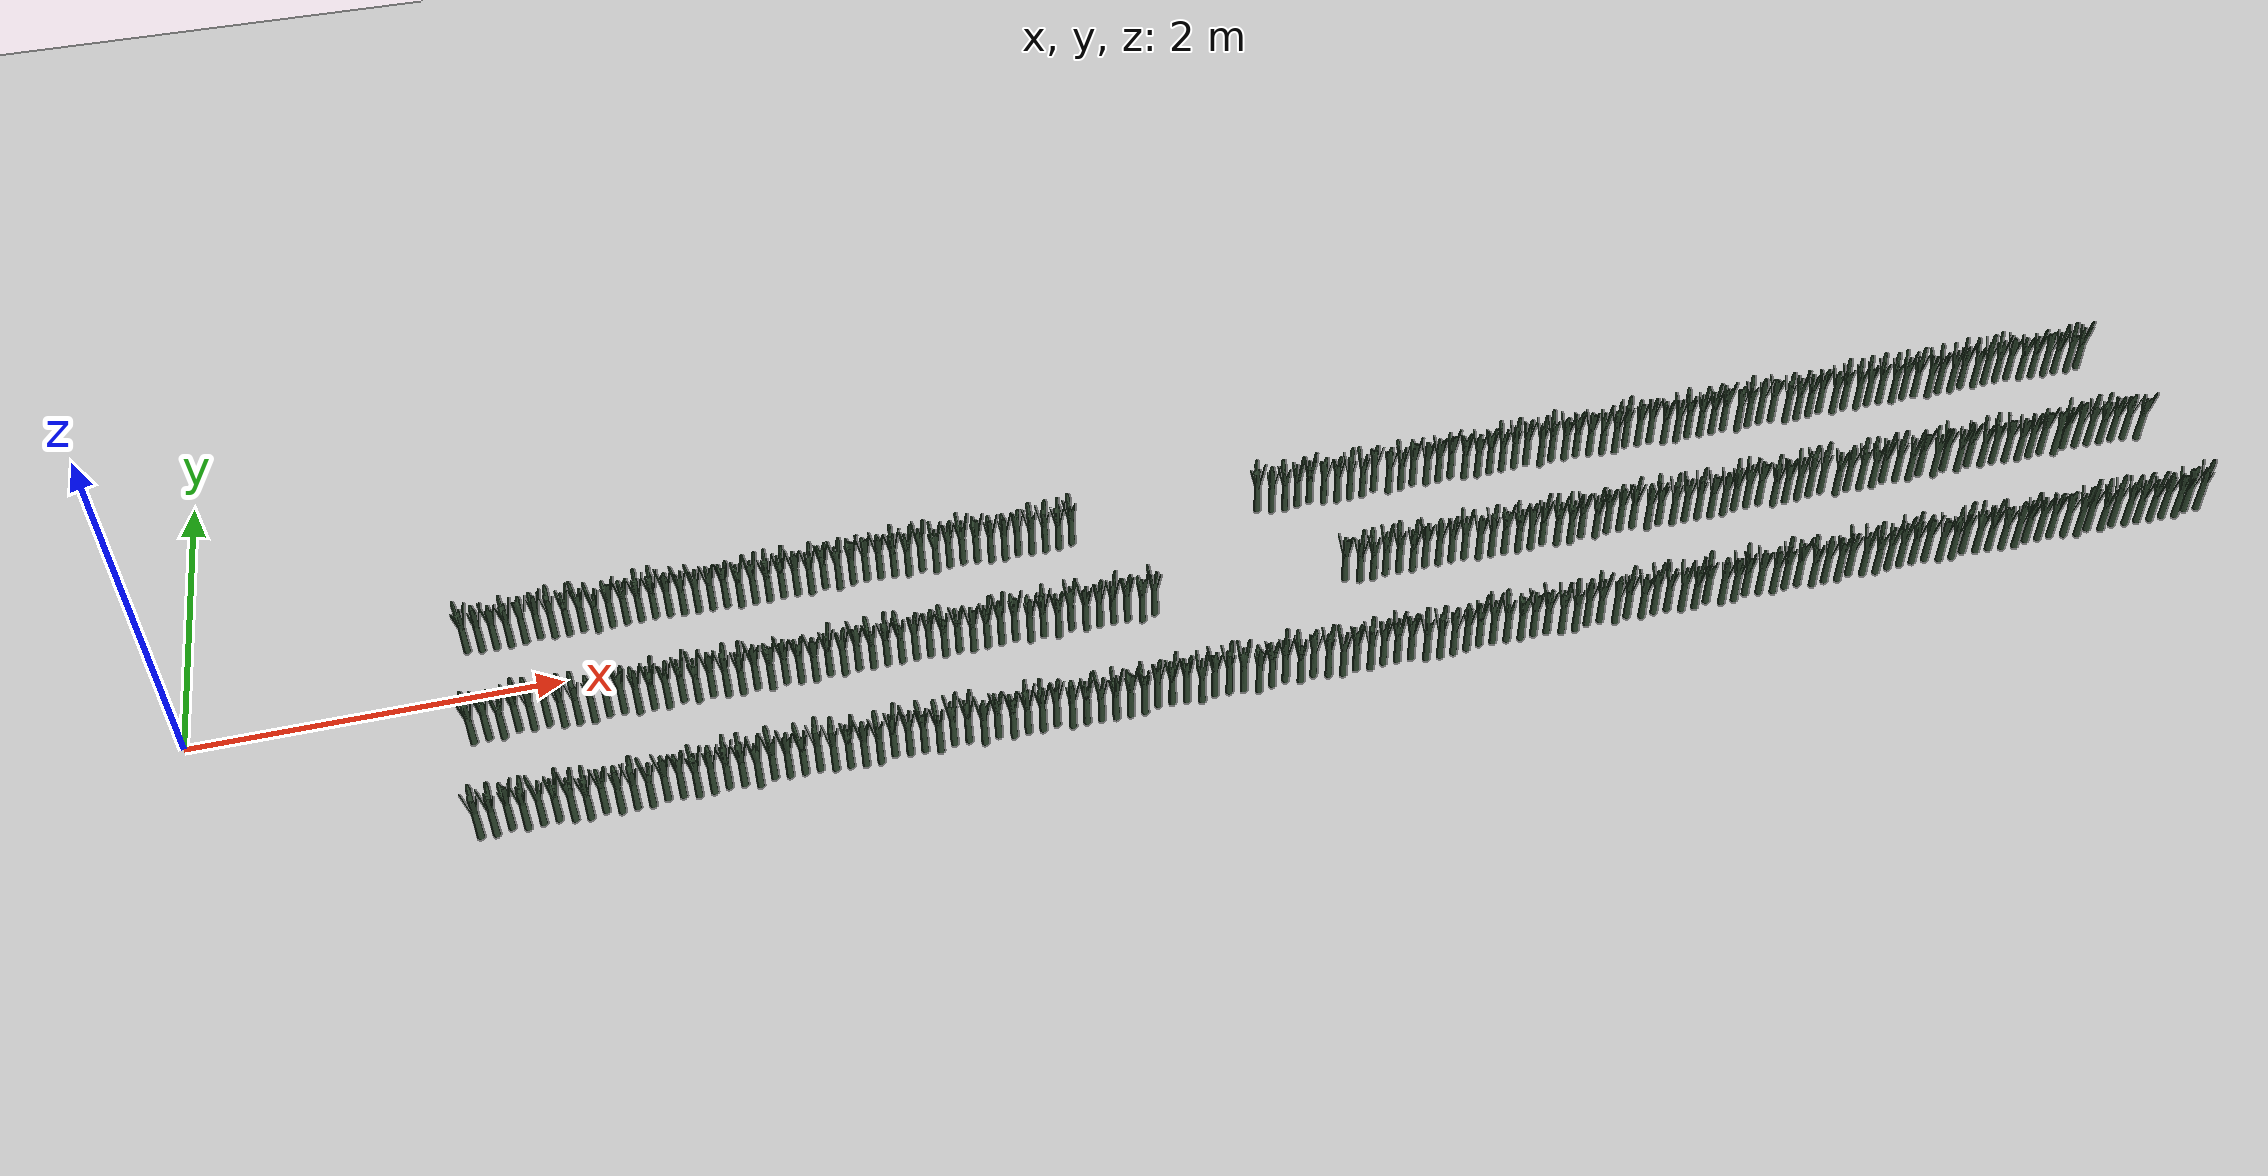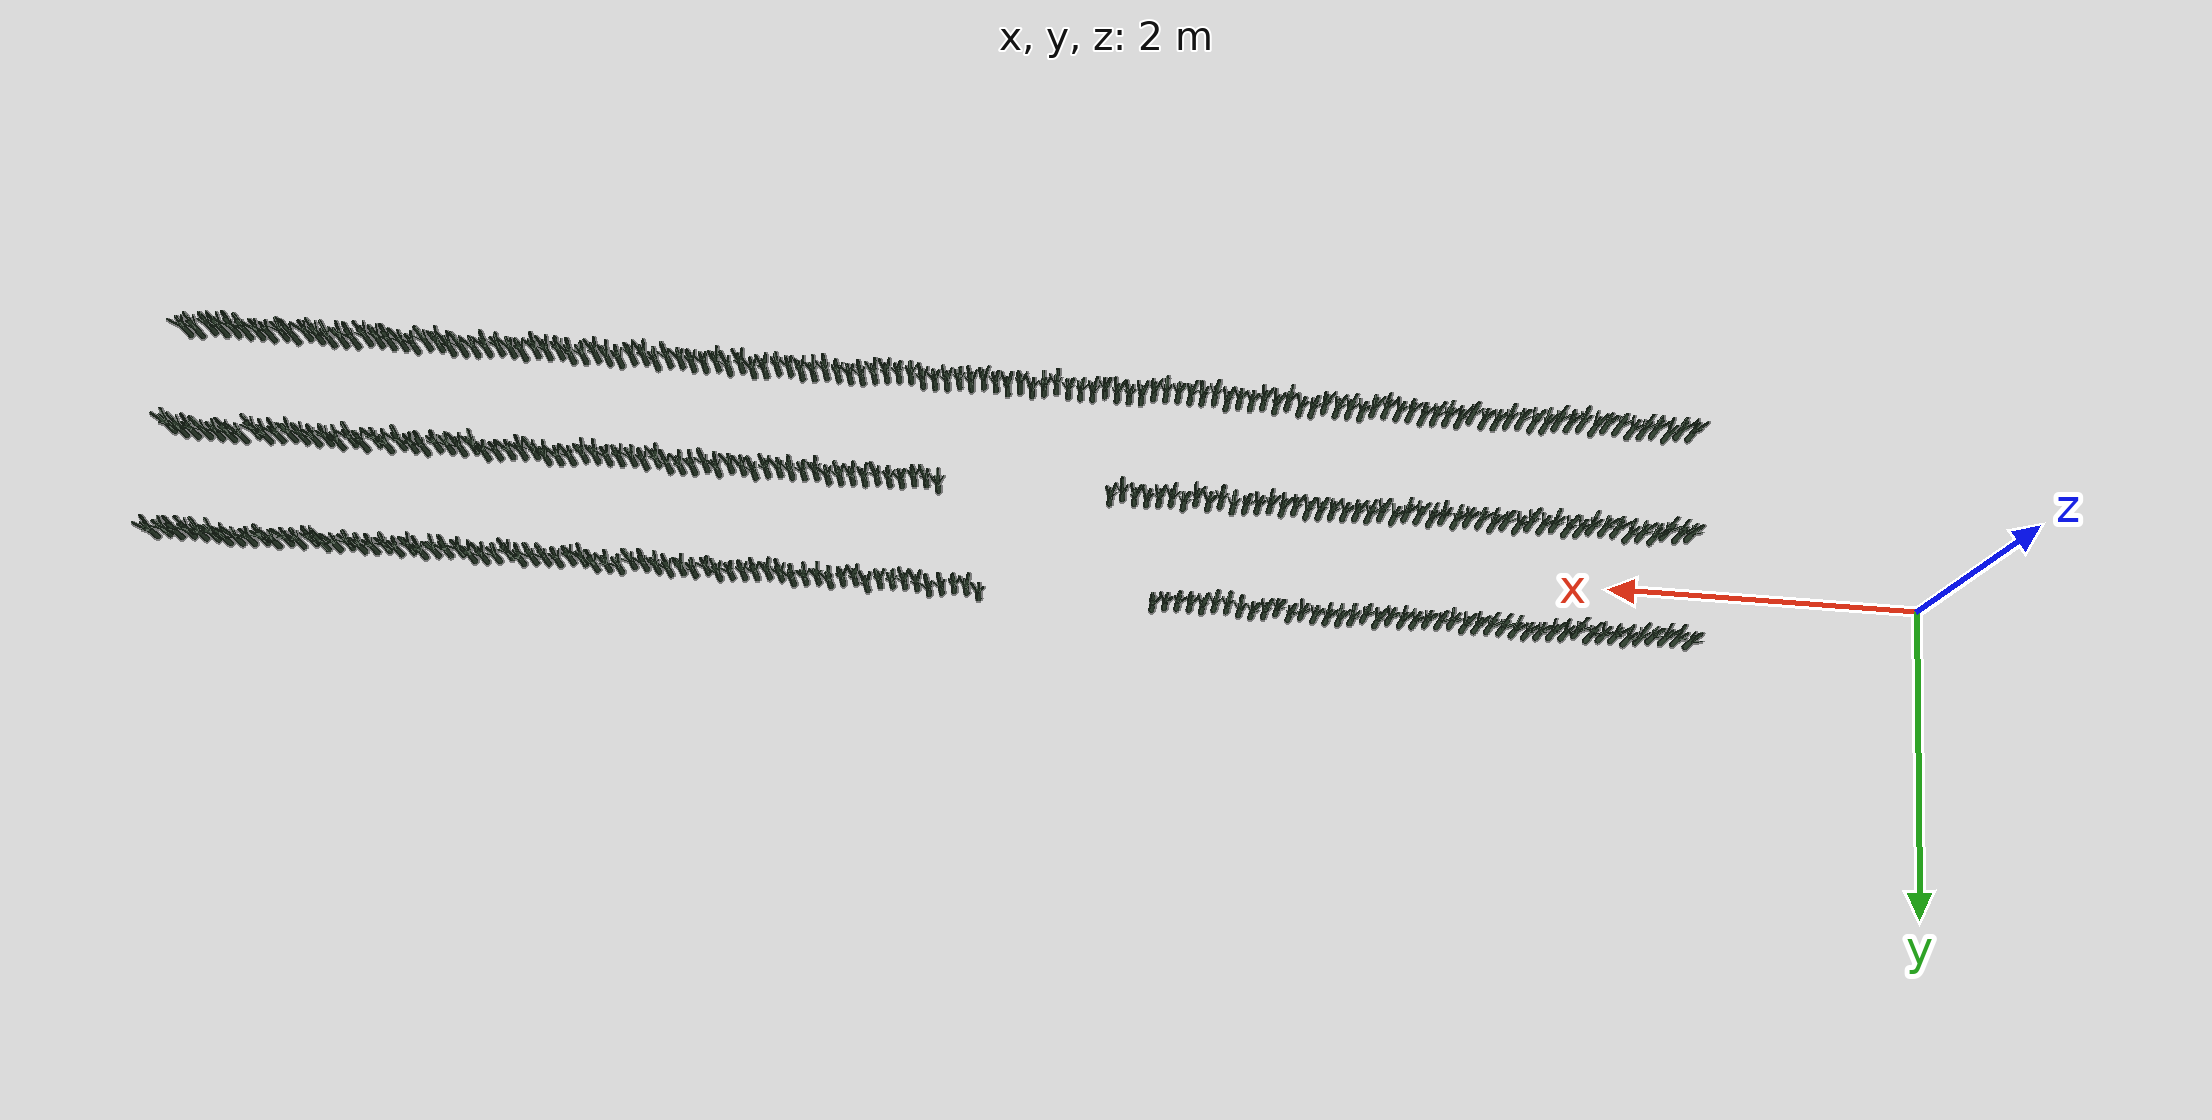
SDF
<sdf version="1.6">
 <world name="default">
  <light name="sun" type="directional">
   <pose>0 0 10 0 -0 0</pose>
   <diffuse>0.5 0.5 0.5 1</diffuse>
   <specular>0.1 0.1 0.1 1</specular>
   <attenuation>
    <range>1000</range>
    <constant>0.9</constant>
    <linear>0.01</linear>
    <quadratic>0.001</quadratic>
   </attenuation>
   <direction>0.9 0.5 -1</direction>
  </light>
  <scene><background>130 200 255 1</background><ambient>130 140 140 1</ambient></scene>
  <include><uri>model://dirt_plane</uri></include>
  <include><uri>model://Leek</uri><pose>1.500000 0.350738 0.15 0 0 6.641212</pose><static>0</static></include>
  <include>
   <uri>model://Leek</uri>
   <pose>1.580000 0.337965 0.15 0 0 -108.317164</pose>
   <static>0</static>
  </include>
  <include>
   <uri>model://Leek</uri>
   <pose>1.660000 0.338486 0.15 0 0 -103.623728</pose>
   <static>0</static>
  </include>
  <include>
   <uri>model://Leek</uri>
   <pose>1.740000 0.334666 0.15 0 0 -138.005332</pose>
   <static>0</static>
  </include>
  <include><uri>model://Leek</uri><pose>1.820000 0.345606 0.15 0 0 -39.543914</pose><static>0</static></include>
  <include><uri>model://Leek</uri><pose>1.900000 0.363814 0.15 0 0 124.326947</pose><static>0</static></include>
  <include><uri>model://Leek</uri><pose>1.980000 0.349480 0.15 0 0 -4.683625</pose><static>0</static></include>
  <include><uri>model://Leek</uri><pose>2.060000 0.349216 0.15 0 0 -7.057647</pose><static>0</static></include>
  <include><uri>model://Leek</uri><pose>2.140000 0.357944 0.15 0 0 71.493227</pose><static>0</static></include>
  <include>
   <uri>model://Leek</uri>
   <pose>2.220000 0.333524 0.15 0 0 -148.279589</pose>
   <static>0</static>
  </include>
  <include><uri>model://Leek</uri><pose>2.300000 0.355450 0.15 0 0 49.053774</pose><static>0</static></include>
  <include><uri>model://Leek</uri><pose>2.380000 0.358770 0.15 0 0 78.932972</pose><static>0</static></include>
  <include><uri>model://Leek</uri><pose>2.460000 0.360460 0.15 0 0 94.143497</pose><static>0</static></include>
  <include><uri>model://Leek</uri><pose>2.540000 0.366741 0.15 0 0 150.665443</pose><static>0</static></include>
  <include><uri>model://Leek</uri><pose>2.620000 0.359409 0.15 0 0 84.679162</pose><static>0</static></include>
  <include><uri>model://Leek</uri><pose>2.700000 0.350998 0.15 0 0 8.978194</pose><static>0</static></include>
  <include><uri>model://Leek</uri><pose>2.780000 0.346807 0.15 0 0 -28.740285</pose><static>0</static></include>
  <include><uri>model://Leek</uri><pose>2.860000 0.349687 0.15 0 0 -2.818820</pose><static>0</static></include>
  <include><uri>model://Leek</uri><pose>2.940000 0.352518 0.15 0 0 22.665138</pose><static>0</static></include>
  <include>
   <uri>model://Leek</uri>
   <pose>3.020000 0.330347 0.15 0 0 -176.876956</pose>
   <static>0</static>
  </include>
  <include><uri>model://Leek</uri><pose>3.100000 0.338923 0.15 0 0 -99.691623</pose><static>0</static></include>
  <include>
   <uri>model://Leek</uri>
   <pose>3.180000 0.335329 0.15 0 0 -132.042288</pose>
   <static>0</static>
  </include>
  <include><uri>model://Leek</uri><pose>3.260000 0.347844 0.15 0 0 -19.403983</pose><static>0</static></include>
  <include><uri>model://Leek</uri><pose>3.340000 0.348261 0.15 0 0 -15.650857</pose><static>0</static></include>
  <include>
   <uri>model://Leek</uri>
   <pose>3.420000 0.335291 0.15 0 0 -132.381455</pose>
   <static>0</static>
  </include>
  <include><uri>model://Leek</uri><pose>3.500000 0.362989 0.15 0 0 116.902059</pose><static>0</static></include>
  <include>
   <uri>model://Leek</uri>
   <pose>3.580000 0.332657 0.15 0 0 -156.091371</pose>
   <static>0</static>
  </include>
  <include><uri>model://Leek</uri><pose>3.660000 0.356133 0.15 0 0 55.195703</pose><static>0</static></include>
  <include><uri>model://Leek</uri><pose>3.740000 0.367121 0.15 0 0 154.091668</pose><static>0</static></include>
  <include><uri>model://Leek</uri><pose>3.820000 0.366402 0.15 0 0 147.619421</pose><static>0</static></include>
  <include><uri>model://Leek</uri><pose>3.900000 0.359763 0.15 0 0 87.863999</pose><static>0</static></include>
  <include><uri>model://Leek</uri><pose>3.980000 0.342928 0.15 0 0 -63.651276</pose><static>0</static></include>
  <include><uri>model://Leek</uri><pose>4.060000 0.364053 0.15 0 0 126.477413</pose><static>0</static></include>
  <include>
   <uri>model://Leek</uri>
   <pose>4.140000 0.331195 0.15 0 0 -169.246372</pose>
   <static>0</static>
  </include>
  <include><uri>model://Leek</uri><pose>4.220000 0.357425 0.15 0 0 66.822756</pose><static>0</static></include>
  <include><uri>model://Leek</uri><pose>4.300000 0.364004 0.15 0 0 126.034911</pose><static>0</static></include>
  <include><uri>model://Leek</uri><pose>4.380000 0.357517 0.15 0 0 67.654908</pose><static>0</static></include>
  <include>
   <uri>model://Leek</uri>
   <pose>4.460000 0.337250 0.15 0 0 -114.753601</pose>
   <static>0</static>
  </include>
  <include>
   <uri>model://Leek</uri>
   <pose>4.540000 0.333759 0.15 0 0 -146.169331</pose>
   <static>0</static>
  </include>
  <include><uri>model://Leek</uri><pose>4.620000 0.353249 0.15 0 0 29.240640</pose><static>0</static></include>
  <include><uri>model://Leek</uri><pose>4.700000 0.343898 0.15 0 0 -54.919062</pose><static>0</static></include>
  <include><uri>model://Leek</uri><pose>4.780000 0.341766 0.15 0 0 -74.102989</pose><static>0</static></include>
  <include><uri>model://Leek</uri><pose>4.860000 0.345085 0.15 0 0 -44.235894</pose><static>0</static></include>
  <include><uri>model://Leek</uri><pose>4.940000 0.363457 0.15 0 0 121.111263</pose><static>0</static></include>
  <include><uri>model://Leek</uri><pose>6.060000 0.369526 0.15 0 0 175.737885</pose><static>0</static></include>
  <include><uri>model://Leek</uri><pose>6.140000 0.340703 0.15 0 0 -83.676758</pose><static>0</static></include>
  <include>
   <uri>model://Leek</uri>
   <pose>6.220000 0.334823 0.15 0 0 -136.588645</pose>
   <static>0</static>
  </include>
  <include><uri>model://Leek</uri><pose>6.300000 0.350574 0.15 0 0 5.165197</pose><static>0</static></include>
  <include><uri>model://Leek</uri><pose>6.380000 0.366630 0.15 0 0 149.665604</pose><static>0</static></include>
  <include>
   <uri>model://Leek</uri>
   <pose>6.460000 0.337880 0.15 0 0 -109.078281</pose>
   <static>0</static>
  </include>
  <include>
   <uri>model://Leek</uri>
   <pose>6.540000 0.330176 0.15 0 0 -178.414914</pose>
   <static>0</static>
  </include>
  <include>
   <uri>model://Leek</uri>
   <pose>6.620000 0.334066 0.15 0 0 -143.408214</pose>
   <static>0</static>
  </include>
  <include>
   <uri>model://Leek</uri>
   <pose>6.700000 0.337669 0.15 0 0 -110.977081</pose>
   <static>0</static>
  </include>
  <include><uri>model://Leek</uri><pose>6.780000 0.369982 0.15 0 0 179.837470</pose><static>0</static></include>
  <include>
   <uri>model://Leek</uri>
   <pose>6.860000 0.330207 0.15 0 0 -178.134073</pose>
   <static>0</static>
  </include>
  <include><uri>model://Leek</uri><pose>6.940000 0.340454 0.15 0 0 -85.913833</pose><static>0</static></include>
  <include><uri>model://Leek</uri><pose>7.020000 0.360988 0.15 0 0 98.893372</pose><static>0</static></include>
  <include><uri>model://Leek</uri><pose>7.100000 0.342640 0.15 0 0 -66.237679</pose><static>0</static></include>
  <include><uri>model://Leek</uri><pose>7.180000 0.353132 0.15 0 0 28.184043</pose><static>0</static></include>
  <include><uri>model://Leek</uri><pose>7.260000 0.365189 0.15 0 0 136.704207</pose><static>0</static></include>
  <include><uri>model://Leek</uri><pose>7.340000 0.339914 0.15 0 0 -90.777461</pose><static>0</static></include>
  <include>
   <uri>model://Leek</uri>
   <pose>7.420000 0.332841 0.15 0 0 -154.431525</pose>
   <static>0</static>
  </include>
  <include><uri>model://Leek</uri><pose>7.500000 0.344107 0.15 0 0 -53.039733</pose><static>0</static></include>
  <include><uri>model://Leek</uri><pose>7.580000 0.348120 0.15 0 0 -16.921188</pose><static>0</static></include>
  <include><uri>model://Leek</uri><pose>7.660000 0.353588 0.15 0 0 32.295222</pose><static>0</static></include>
  <include><uri>model://Leek</uri><pose>7.740000 0.365068 0.15 0 0 135.616470</pose><static>0</static></include>
  <include>
   <uri>model://Leek</uri>
   <pose>7.820000 0.330540 0.15 0 0 -175.141695</pose>
   <static>0</static>
  </include>
  <include><uri>model://Leek</uri><pose>7.900000 0.357836 0.15 0 0 70.525484</pose><static>0</static></include>
  <include><uri>model://Leek</uri><pose>7.980000 0.347492 0.15 0 0 -22.569910</pose><static>0</static></include>
  <include><uri>model://Leek</uri><pose>8.060000 0.362255 0.15 0 0 110.290647</pose><static>0</static></include>
  <include><uri>model://Leek</uri><pose>8.140000 0.348928 0.15 0 0 -9.645090</pose><static>0</static></include>
  <include>
   <uri>model://Leek</uri>
   <pose>8.220000 0.337989 0.15 0 0 -108.097277</pose>
   <static>0</static>
  </include>
  <include>
   <uri>model://Leek</uri>
   <pose>8.300000 0.331080 0.15 0 0 -170.281667</pose>
   <static>0</static>
  </include>
  <include><uri>model://Leek</uri><pose>8.380000 0.367569 0.15 0 0 158.122796</pose><static>0</static></include>
  <include><uri>model://Leek</uri><pose>8.460000 0.360959 0.15 0 0 98.633389</pose><static>0</static></include>
  <include><uri>model://Leek</uri><pose>8.540000 0.367157 0.15 0 0 154.414109</pose><static>0</static></include>
  <include>
   <uri>model://Leek</uri>
   <pose>8.620000 0.335692 0.15 0 0 -128.767985</pose>
   <static>0</static>
  </include>
  <include>
   <uri>model://Leek</uri>
   <pose>8.700000 0.331394 0.15 0 0 -167.449909</pose>
   <static>0</static>
  </include>
  <include><uri>model://Leek</uri><pose>8.780000 0.352994 0.15 0 0 26.948638</pose><static>0</static></include>
  <include><uri>model://Leek</uri><pose>8.860000 0.347103 0.15 0 0 -26.069259</pose><static>0</static></include>
  <include><uri>model://Leek</uri><pose>8.940000 0.350587 0.15 0 0 5.286899</pose><static>0</static></include>
  <include><uri>model://Leek</uri><pose>9.020000 0.363090 0.15 0 0 117.806316</pose><static>0</static></include>
  <include>
   <uri>model://Leek</uri>
   <pose>9.100000 0.330182 0.15 0 0 -178.362670</pose>
   <static>0</static>
  </include>
  <include><uri>model://Leek</uri><pose>9.180000 0.355036 0.15 0 0 45.319845</pose><static>0</static></include>
  <include><uri>model://Leek</uri><pose>9.260000 0.365809 0.15 0 0 142.278627</pose><static>0</static></include>
  <include><uri>model://Leek</uri><pose>9.340000 0.366360 0.15 0 0 147.244085</pose><static>0</static></include>
  <include>
   <uri>model://Leek</uri>
   <pose>9.420000 0.331253 0.15 0 0 -168.721054</pose>
   <static>0</static>
  </include>
  <include><uri>model://Leek</uri><pose>9.500000 0.342874 0.15 0 0 -64.136835</pose><static>0</static></include>
  <include><uri>model://Leek</uri><pose>9.580000 0.348237 0.15 0 0 -15.871108</pose><static>0</static></include>
  <include><uri>model://Leek</uri><pose>9.660000 0.366440 0.15 0 0 147.956955</pose><static>0</static></include>
  <include><uri>model://Leek</uri><pose>9.740000 0.339810 0.15 0 0 -91.709319</pose><static>0</static></include>
  <include><uri>model://Leek</uri><pose>9.820000 0.358521 0.15 0 0 76.690620</pose><static>0</static></include>
  <include><uri>model://Leek</uri><pose>9.900000 0.340390 0.15 0 0 -86.487112</pose><static>0</static></include>
  <include><uri>model://Leek</uri><pose>9.980000 0.355769 0.15 0 0 51.917744</pose><static>0</static></include>
  <include><uri>model://Leek</uri><pose>10.060000 0.356436 0.15 0 0 57.925815</pose><static>0</static></include>
  <include>
   <uri>model://Leek</uri>
   <pose>10.140000 0.339678 0.15 0 0 -92.901990</pose>
   <static>0</static>
  </include>
  <include><uri>model://Leek</uri><pose>10.220000 0.356281 0.15 0 0 56.532088</pose><static>0</static></include>
  <include><uri>model://Leek</uri><pose>10.300000 0.358976 0.15 0 0 80.786375</pose><static>0</static></include>
  <include>
   <uri>model://Leek</uri>
   <pose>10.380000 0.332077 0.15 0 0 -161.306491</pose>
   <static>0</static>
  </include>
  <include><uri>model://Leek</uri><pose>10.460000 0.353685 0.15 0 0 33.165953</pose><static>0</static></include>
  <include>
   <uri>model://Leek</uri>
   <pose>10.540000 0.343026 0.15 0 0 -62.769984</pose>
   <static>0</static>
  </include>
  <include>
   <uri>model://Leek</uri>
   <pose>10.620000 0.363939 0.15 0 0 125.450021</pose>
   <static>0</static>
  </include>
  <include>
   <uri>model://Leek</uri>
   <pose>10.700000 0.347399 0.15 0 0 -23.409945</pose>
   <static>0</static>
  </include>
  <include><uri>model://Leek</uri><pose>10.780000 0.360566 0.15 0 0 95.095916</pose><static>0</static></include>
  <include>
   <uri>model://Leek</uri>
   <pose>10.860000 0.363943 0.15 0 0 125.489317</pose>
   <static>0</static>
  </include>
  <include>
   <uri>model://Leek</uri>
   <pose>10.940000 0.367039 0.15 0 0 153.348278</pose>
   <static>0</static>
  </include>
  <include>
   <uri>model://Leek</uri>
   <pose>11.020000 0.348229 0.15 0 0 -15.938171</pose>
   <static>0</static>
  </include>
  <include>
   <uri>model://Leek</uri>
   <pose>11.100000 0.347754 0.15 0 0 -20.214056</pose>
   <static>0</static>
  </include>
  <include>
   <uri>model://Leek</uri>
   <pose>11.180000 0.339941 0.15 0 0 -90.527195</pose>
   <static>0</static>
  </include>
  <include><uri>model://Leek</uri><pose>11.260000 0.349871 0.15 0 0 -1.164382</pose><static>0</static></include>
  <include>
   <uri>model://Leek</uri>
   <pose>11.340000 0.337557 0.15 0 0 -111.984070</pose>
   <static>0</static>
  </include>
  <include><uri>model://Leek</uri><pose>11.420000 0.356818 0.15 0 0 61.365972</pose><static>0</static></include>
  <include>
   <uri>model://Leek</uri>
   <pose>1.500000 -0.366033 0.15 0 0 -144.296088</pose>
   <static>0</static>
  </include>
  <include>
   <uri>model://Leek</uri>
   <pose>1.580000 -0.353177 0.15 0 0 -28.590391</pose>
   <static>0</static>
  </include>
  <include>
   <uri>model://Leek</uri>
   <pose>1.660000 -0.367863 0.15 0 0 -160.765905</pose>
   <static>0</static>
  </include>
  <include>
   <uri>model://Leek</uri>
   <pose>1.740000 -0.331004 0.15 0 0 170.965925</pose>
   <static>0</static>
  </include>
  <include><uri>model://Leek</uri><pose>1.820000 -0.344914 0.15 0 0 45.772939</pose><static>0</static></include>
  <include>
   <uri>model://Leek</uri>
   <pose>1.900000 -0.332695 0.15 0 0 155.748882</pose>
   <static>0</static>
  </include>
  <include>
   <uri>model://Leek</uri>
   <pose>1.980000 -0.361010 0.15 0 0 -99.089471</pose>
   <static>0</static>
  </include>
  <include>
   <uri>model://Leek</uri>
   <pose>2.060000 -0.363774 0.15 0 0 -123.969971</pose>
   <static>0</static>
  </include>
  <include>
   <uri>model://Leek</uri>
   <pose>2.140000 -0.369010 0.15 0 0 -171.092462</pose>
   <static>0</static>
  </include>
  <include><uri>model://Leek</uri><pose>2.220000 -0.344480 0.15 0 0 49.683829</pose><static>0</static></include>
  <include><uri>model://Leek</uri><pose>2.300000 -0.339783 0.15 0 0 91.954410</pose><static>0</static></include>
  <include>
   <uri>model://Leek</uri>
   <pose>2.380000 -0.365509 0.15 0 0 -139.585137</pose>
   <static>0</static>
  </include>
  <include><uri>model://Leek</uri><pose>2.460000 -0.349367 0.15 0 0 5.699175</pose><static>0</static></include>
  <include>
   <uri>model://Leek</uri>
   <pose>2.540000 -0.364202 0.15 0 0 -127.814466</pose>
   <static>0</static>
  </include>
  <include>
   <uri>model://Leek</uri>
   <pose>2.620000 -0.337519 0.15 0 0 112.332763</pose>
   <static>0</static>
  </include>
  <include>
   <uri>model://Leek</uri>
   <pose>2.700000 -0.359003 0.15 0 0 -81.024208</pose>
   <static>0</static>
  </include>
  <include>
   <uri>model://Leek</uri>
   <pose>2.780000 -0.337074 0.15 0 0 116.333094</pose>
   <static>0</static>
  </include>
  <include>
   <uri>model://Leek</uri>
   <pose>2.860000 -0.356125 0.15 0 0 -55.126251</pose>
   <static>0</static>
  </include>
  <include>
   <uri>model://Leek</uri>
   <pose>2.940000 -0.362603 0.15 0 0 -113.430679</pose>
   <static>0</static>
  </include>
  <include><uri>model://Leek</uri><pose>3.020000 -0.341287 0.15 0 0 78.414388</pose><static>0</static></include>
  <include>
   <uri>model://Leek</uri>
   <pose>3.100000 -0.367587 0.15 0 0 -158.283199</pose>
   <static>0</static>
  </include>
  <include><uri>model://Leek</uri><pose>3.180000 -0.341295 0.15 0 0 78.343498</pose><static>0</static></include>
  <include>
   <uri>model://Leek</uri>
   <pose>3.260000 -0.356569 0.15 0 0 -59.124346</pose>
   <static>0</static>
  </include>
  <include>
   <uri>model://Leek</uri>
   <pose>3.340000 -0.367116 0.15 0 0 -154.045165</pose>
   <static>0</static>
  </include>
  <include>
   <uri>model://Leek</uri>
   <pose>3.420000 -0.338888 0.15 0 0 100.011337</pose>
   <static>0</static>
  </include>
  <include>
   <uri>model://Leek</uri>
   <pose>3.500000 -0.357930 0.15 0 0 -71.370610</pose>
   <static>0</static>
  </include>
  <include>
   <uri>model://Leek</uri>
   <pose>3.580000 -0.337131 0.15 0 0 115.819202</pose>
   <static>0</static>
  </include>
  <include><uri>model://Leek</uri><pose>3.660000 -0.346984 0.15 0 0 27.141846</pose><static>0</static></include>
  <include><uri>model://Leek</uri><pose>3.740000 -0.339556 0.15 0 0 93.995789</pose><static>0</static></include>
  <include><uri>model://Leek</uri><pose>3.820000 -0.344188 0.15 0 0 52.309194</pose><static>0</static></include>
  <include>
   <uri>model://Leek</uri>
   <pose>3.900000 -0.336289 0.15 0 0 123.399502</pose>
   <static>0</static>
  </include>
  <include>
   <uri>model://Leek</uri>
   <pose>3.980000 -0.332810 0.15 0 0 154.712275</pose>
   <static>0</static>
  </include>
  <include>
   <uri>model://Leek</uri>
   <pose>4.060000 -0.356063 0.15 0 0 -54.567453</pose>
   <static>0</static>
  </include>
  <include><uri>model://Leek</uri><pose>4.140000 -0.340547 0.15 0 0 85.077282</pose><static>0</static></include>
  <include>
   <uri>model://Leek</uri>
   <pose>4.220000 -0.356623 0.15 0 0 -59.606856</pose>
   <static>0</static>
  </include>
  <include><uri>model://Leek</uri><pose>4.300000 -0.347983 0.15 0 0 18.151946</pose><static>0</static></include>
  <include><uri>model://Leek</uri><pose>4.380000 -0.340826 0.15 0 0 82.570088</pose><static>0</static></include>
  <include>
   <uri>model://Leek</uri>
   <pose>4.460000 -0.332008 0.15 0 0 161.923863</pose>
   <static>0</static>
  </include>
  <include>
   <uri>model://Leek</uri>
   <pose>4.540000 -0.364139 0.15 0 0 -127.251339</pose>
   <static>0</static>
  </include>
  <include><uri>model://Leek</uri><pose>4.620000 -0.342339 0.15 0 0 68.952027</pose><static>0</static></include>
  <include>
   <uri>model://Leek</uri>
   <pose>4.700000 -0.368461 0.15 0 0 -166.152457</pose>
   <static>0</static>
  </include>
  <include>
   <uri>model://Leek</uri>
   <pose>4.780000 -0.330385 0.15 0 0 176.535692</pose>
   <static>0</static>
  </include>
  <include>
   <uri>model://Leek</uri>
   <pose>4.860000 -0.353879 0.15 0 0 -34.914098</pose>
   <static>0</static>
  </include>
  <include><uri>model://Leek</uri><pose>4.940000 -0.343976 0.15 0 0 54.214063</pose><static>0</static></include>
  <include>
   <uri>model://Leek</uri>
   <pose>5.020000 -0.337503 0.15 0 0 112.475994</pose>
   <static>0</static>
  </include>
  <include><uri>model://Leek</uri><pose>5.100000 -0.339108 0.15 0 0 98.027967</pose><static>0</static></include>
  <include>
   <uri>model://Leek</uri>
   <pose>5.180000 -0.366897 0.15 0 0 -152.077260</pose>
   <static>0</static>
  </include>
  <include>
   <uri>model://Leek</uri>
   <pose>5.260000 -0.330889 0.15 0 0 172.001210</pose>
   <static>0</static>
  </include>
  <include>
   <uri>model://Leek</uri>
   <pose>6.380000 -0.333609 0.15 0 0 147.519602</pose>
   <static>0</static>
  </include>
  <include>
   <uri>model://Leek</uri>
   <pose>6.460000 -0.365429 0.15 0 0 -138.863635</pose>
   <static>0</static>
  </include>
  <include>
   <uri>model://Leek</uri>
   <pose>6.540000 -0.366570 0.15 0 0 -149.125534</pose>
   <static>0</static>
  </include>
  <include><uri>model://Leek</uri><pose>6.620000 -0.348546 0.15 0 0 13.089577</pose><static>0</static></include>
  <include><uri>model://Leek</uri><pose>6.700000 -0.347739 0.15 0 0 20.347566</pose><static>0</static></include>
  <include>
   <uri>model://Leek</uri>
   <pose>6.780000 -0.359154 0.15 0 0 -82.383544</pose>
   <static>0</static>
  </include>
  <include><uri>model://Leek</uri><pose>6.860000 -0.341340 0.15 0 0 77.938547</pose><static>0</static></include>
  <include><uri>model://Leek</uri><pose>6.940000 -0.345336 0.15 0 0 41.977671</pose><static>0</static></include>
  <include><uri>model://Leek</uri><pose>7.020000 -0.339819 0.15 0 0 91.632784</pose><static>0</static></include>
  <include>
   <uri>model://Leek</uri>
   <pose>7.100000 -0.336004 0.15 0 0 125.961147</pose>
   <static>0</static>
  </include>
  <include>
   <uri>model://Leek</uri>
   <pose>7.180000 -0.359457 0.15 0 0 -85.117022</pose>
   <static>0</static>
  </include>
  <include>
   <uri>model://Leek</uri>
   <pose>7.260000 -0.352687 0.15 0 0 -24.183989</pose>
   <static>0</static>
  </include>
  <include><uri>model://Leek</uri><pose>7.340000 -0.350862 0.15 0 0 -7.754610</pose><static>0</static></include>
  <include>
   <uri>model://Leek</uri>
   <pose>7.420000 -0.361871 0.15 0 0 -106.834552</pose>
   <static>0</static>
  </include>
  <include>
   <uri>model://Leek</uri>
   <pose>7.500000 -0.354467 0.15 0 0 -40.201778</pose>
   <static>0</static>
  </include>
  <include>
   <uri>model://Leek</uri>
   <pose>7.580000 -0.332647 0.15 0 0 156.175263</pose>
   <static>0</static>
  </include>
  <include>
   <uri>model://Leek</uri>
   <pose>7.660000 -0.360474 0.15 0 0 -94.267540</pose>
   <static>0</static>
  </include>
  <include>
   <uri>model://Leek</uri>
   <pose>7.740000 -0.367458 0.15 0 0 -157.122509</pose>
   <static>0</static>
  </include>
  <include>
   <uri>model://Leek</uri>
   <pose>7.820000 -0.334296 0.15 0 0 141.334048</pose>
   <static>0</static>
  </include>
  <include>
   <uri>model://Leek</uri>
   <pose>7.900000 -0.359882 0.15 0 0 -88.942237</pose>
   <static>0</static>
  </include>
  <include>
   <uri>model://Leek</uri>
   <pose>7.980000 -0.335688 0.15 0 0 128.807730</pose>
   <static>0</static>
  </include>
  <include>
   <uri>model://Leek</uri>
   <pose>8.060000 -0.334857 0.15 0 0 136.288124</pose>
   <static>0</static>
  </include>
  <include>
   <uri>model://Leek</uri>
   <pose>8.140000 -0.334037 0.15 0 0 143.669374</pose>
   <static>0</static>
  </include>
  <include>
   <uri>model://Leek</uri>
   <pose>8.220000 -0.369071 0.15 0 0 -171.639606</pose>
   <static>0</static>
  </include>
  <include><uri>model://Leek</uri><pose>8.300000 -0.347000 0.15 0 0 27.003553</pose><static>0</static></include>
  <include>
   <uri>model://Leek</uri>
   <pose>8.380000 -0.366646 0.15 0 0 -149.814656</pose>
   <static>0</static>
  </include>
  <include>
   <uri>model://Leek</uri>
   <pose>8.460000 -0.358833 0.15 0 0 -79.494415</pose>
   <static>0</static>
  </include>
  <include>
   <uri>model://Leek</uri>
   <pose>8.540000 -0.358286 0.15 0 0 -74.574082</pose>
   <static>0</static>
  </include>
  <include>
   <uri>model://Leek</uri>
   <pose>8.620000 -0.365744 0.15 0 0 -141.697967</pose>
   <static>0</static>
  </include>
  <include>
   <uri>model://Leek</uri>
   <pose>8.700000 -0.365759 0.15 0 0 -141.830520</pose>
   <static>0</static>
  </include>
  <include><uri>model://Leek</uri><pose>8.780000 -0.342356 0.15 0 0 68.797248</pose><static>0</static></include>
  <include>
   <uri>model://Leek</uri>
   <pose>8.860000 -0.336024 0.15 0 0 125.786874</pose>
   <static>0</static>
  </include>
  <include>
   <uri>model://Leek</uri>
   <pose>8.940000 -0.332931 0.15 0 0 153.619705</pose>
   <static>0</static>
  </include>
  <include>
   <uri>model://Leek</uri>
   <pose>9.020000 -0.365417 0.15 0 0 -138.752268</pose>
   <static>0</static>
  </include>
  <include>
   <uri>model://Leek</uri>
   <pose>9.100000 -0.356621 0.15 0 0 -59.592951</pose>
   <static>0</static>
  </include>
  <include>
   <uri>model://Leek</uri>
   <pose>9.180000 -0.352084 0.15 0 0 -18.756589</pose>
   <static>0</static>
  </include>
  <include>
   <uri>model://Leek</uri>
   <pose>9.260000 -0.338735 0.15 0 0 101.384309</pose>
   <static>0</static>
  </include>
  <include>
   <uri>model://Leek</uri>
   <pose>9.340000 -0.331051 0.15 0 0 170.543416</pose>
   <static>0</static>
  </include>
  <include>
   <uri>model://Leek</uri>
   <pose>9.420000 -0.369914 0.15 0 0 -179.224737</pose>
   <static>0</static>
  </include>
  <include><uri>model://Leek</uri><pose>9.500000 -0.350945 0.15 0 0 -8.500728</pose><static>0</static></include>
  <include>
   <uri>model://Leek</uri>
   <pose>9.580000 -0.358942 0.15 0 0 -80.480586</pose>
   <static>0</static>
  </include>
  <include>
   <uri>model://Leek</uri>
   <pose>9.660000 -0.363785 0.15 0 0 -124.060628</pose>
   <static>0</static>
  </include>
  <include>
   <uri>model://Leek</uri>
   <pose>9.740000 -0.335468 0.15 0 0 130.783525</pose>
   <static>0</static>
  </include>
  <include><uri>model://Leek</uri><pose>9.820000 -0.347117 0.15 0 0 25.948881</pose><static>0</static></include>
  <include>
   <uri>model://Leek</uri>
   <pose>9.900000 -0.361320 0.15 0 0 -101.881794</pose>
   <static>0</static>
  </include>
  <include>
   <uri>model://Leek</uri>
   <pose>9.980000 -0.333449 0.15 0 0 148.958483</pose>
   <static>0</static>
  </include>
  <include>
   <uri>model://Leek</uri>
   <pose>10.060000 -0.367453 0.15 0 0 -157.074675</pose>
   <static>0</static>
  </include>
  <include>
   <uri>model://Leek</uri>
   <pose>10.140000 -0.331613 0.15 0 0 165.486456</pose>
   <static>0</static>
  </include>
  <include>
   <uri>model://Leek</uri>
   <pose>10.220000 -0.358526 0.15 0 0 -76.738276</pose>
   <static>0</static>
  </include>
  <include>
   <uri>model://Leek</uri>
   <pose>10.300000 -0.332215 0.15 0 0 160.060836</pose>
   <static>0</static>
  </include>
  <include>
   <uri>model://Leek</uri>
   <pose>10.380000 -0.352600 0.15 0 0 -23.397829</pose>
   <static>0</static>
  </include>
  <include>
   <uri>model://Leek</uri>
   <pose>10.460000 -0.344241 0.15 0 0 51.830362</pose>
   <static>0</static>
  </include>
  <include>
   <uri>model://Leek</uri>
   <pose>10.540000 -0.352552 0.15 0 0 -22.968705</pose>
   <static>0</static>
  </include>
  <include>
   <uri>model://Leek</uri>
   <pose>10.620000 -0.361564 0.15 0 0 -104.071693</pose>
   <static>0</static>
  </include>
  <include><uri>model://Leek</uri><pose>10.700000 -0.349624 0.15 0 0 3.380209</pose><static>0</static></include>
  <include>
   <uri>model://Leek</uri>
   <pose>10.780000 -0.339736 0.15 0 0 92.373235</pose>
   <static>0</static>
  </include>
  <include>
   <uri>model://Leek</uri>
   <pose>10.860000 -0.369141 0.15 0 0 -172.273316</pose>
   <static>0</static>
  </include>
  <include>
   <uri>model://Leek</uri>
   <pose>10.940000 -0.330466 0.15 0 0 175.803341</pose>
   <static>0</static>
  </include>
  <include>
   <uri>model://Leek</uri>
   <pose>11.020000 -0.334223 0.15 0 0 141.995608</pose>
   <static>0</static>
  </include>
  <include>
   <uri>model://Leek</uri>
   <pose>11.100000 -0.337322 0.15 0 0 114.097977</pose>
   <static>0</static>
  </include>
  <include>
   <uri>model://Leek</uri>
   <pose>11.180000 -0.342384 0.15 0 0 68.543376</pose>
   <static>0</static>
  </include>
  <include>
   <uri>model://Leek</uri>
   <pose>11.260000 -0.337753 0.15 0 0 110.224572</pose>
   <static>0</static>
  </include>
  <include>
   <uri>model://Leek</uri>
   <pose>11.340000 -0.343309 0.15 0 0 60.218063</pose>
   <static>0</static>
  </include>
  <include>
   <uri>model://Leek</uri>
   <pose>11.420000 -0.366254 0.15 0 0 -146.284428</pose>
   <static>0</static>
  </include>
  <include>
   <uri>model://Leek</uri>
   <pose>1.500000 -1.054701 0.15 0 0 -42.310166</pose>
   <static>0</static>
  </include>
  <include>
   <uri>model://Leek</uri>
   <pose>1.580000 -1.061014 0.15 0 0 -99.127825</pose>
   <static>0</static>
  </include>
  <include>
   <uri>model://Leek</uri>
   <pose>1.660000 -1.034079 0.15 0 0 143.288081</pose>
   <static>0</static>
  </include>
  <include>
   <uri>model://Leek</uri>
   <pose>1.740000 -1.057529 0.15 0 0 -67.759040</pose>
   <static>0</static>
  </include>
  <include><uri>model://Leek</uri><pose>1.820000 -1.045513 0.15 0 0 40.384020</pose><static>0</static></include>
  <include><uri>model://Leek</uri><pose>1.900000 -1.039602 0.15 0 0 93.577676</pose><static>0</static></include>
  <include>
   <uri>model://Leek</uri>
   <pose>1.980000 -1.061755 0.15 0 0 -105.791222</pose>
   <static>0</static>
  </include>
  <include>
   <uri>model://Leek</uri>
   <pose>2.060000 -1.068854 0.15 0 0 -169.684610</pose>
   <static>0</static>
  </include>
  <include><uri>model://Leek</uri><pose>2.140000 -1.043319 0.15 0 0 60.130314</pose><static>0</static></include>
  <include>
   <uri>model://Leek</uri>
   <pose>2.220000 -1.068330 0.15 0 0 -164.974246</pose>
   <static>0</static>
  </include>
  <include>
   <uri>model://Leek</uri>
   <pose>2.300000 -1.059603 0.15 0 0 -86.423579</pose>
   <static>0</static>
  </include>
  <include>
   <uri>model://Leek</uri>
   <pose>2.380000 -1.063665 0.15 0 0 -122.989158</pose>
   <static>0</static>
  </include>
  <include>
   <uri>model://Leek</uri>
   <pose>2.460000 -1.037073 0.15 0 0 116.342564</pose>
   <static>0</static>
  </include>
  <include><uri>model://Leek</uri><pose>2.540000 -1.039111 0.15 0 0 98.001129</pose><static>0</static></include>
  <include>
   <uri>model://Leek</uri>
   <pose>2.620000 -1.056943 0.15 0 0 -62.482678</pose>
   <static>0</static>
  </include>
  <include>
   <uri>model://Leek</uri>
   <pose>2.700000 -1.052284 0.15 0 0 -20.554703</pose>
   <static>0</static>
  </include>
  <include>
   <uri>model://Leek</uri>
   <pose>2.780000 -1.035347 0.15 0 0 131.877497</pose>
   <static>0</static>
  </include>
  <include><uri>model://Leek</uri><pose>2.860000 -1.040921 0.15 0 0 81.706810</pose><static>0</static></include>
  <include>
   <uri>model://Leek</uri>
   <pose>2.940000 -1.068746 0.15 0 0 -168.717184</pose>
   <static>0</static>
  </include>
  <include>
   <uri>model://Leek</uri>
   <pose>3.020000 -1.031640 0.15 0 0 165.239344</pose>
   <static>0</static>
  </include>
  <include><uri>model://Leek</uri><pose>3.100000 -1.039896 0.15 0 0 90.933371</pose><static>0</static></include>
  <include><uri>model://Leek</uri><pose>3.180000 -1.039276 0.15 0 0 96.511608</pose><static>0</static></include>
  <include>
   <uri>model://Leek</uri>
   <pose>3.260000 -1.033073 0.15 0 0 152.346284</pose>
   <static>0</static>
  </include>
  <include>
   <uri>model://Leek</uri>
   <pose>3.340000 -1.053321 0.15 0 0 -29.888316</pose>
   <static>0</static>
  </include>
  <include>
   <uri>model://Leek</uri>
   <pose>3.420000 -1.052878 0.15 0 0 -25.901943</pose>
   <static>0</static>
  </include>
  <include>
   <uri>model://Leek</uri>
   <pose>3.500000 -1.063622 0.15 0 0 -122.601998</pose>
   <static>0</static>
  </include>
  <include>
   <uri>model://Leek</uri>
   <pose>3.580000 -1.065862 0.15 0 0 -142.756578</pose>
   <static>0</static>
  </include>
  <include>
   <uri>model://Leek</uri>
   <pose>3.660000 -1.031898 0.15 0 0 162.919949</pose>
   <static>0</static>
  </include>
  <include><uri>model://Leek</uri><pose>3.740000 -1.043433 0.15 0 0 59.100378</pose><static>0</static></include>
  <include><uri>model://Leek</uri><pose>3.820000 -1.042079 0.15 0 0 71.292763</pose><static>0</static></include>
  <include>
   <uri>model://Leek</uri>
   <pose>3.900000 -1.065843 0.15 0 0 -142.586430</pose>
   <static>0</static>
  </include>
  <include>
   <uri>model://Leek</uri>
   <pose>3.980000 -1.033148 0.15 0 0 151.667196</pose>
   <static>0</static>
  </include>
  <include>
   <uri>model://Leek</uri>
   <pose>4.060000 -1.034012 0.15 0 0 143.887902</pose>
   <static>0</static>
  </include>
  <include>
   <uri>model://Leek</uri>
   <pose>4.140000 -1.069923 0.15 0 0 -179.305027</pose>
   <static>0</static>
  </include>
  <include>
   <uri>model://Leek</uri>
   <pose>4.220000 -1.037742 0.15 0 0 110.325686</pose>
   <static>0</static>
  </include>
  <include>
   <uri>model://Leek</uri>
   <pose>4.300000 -1.061473 0.15 0 0 -103.258096</pose>
   <static>0</static>
  </include>
  <include><uri>model://Leek</uri><pose>4.380000 -1.047209 0.15 0 0 25.119006</pose><static>0</static></include>
  <include>
   <uri>model://Leek</uri>
   <pose>4.460000 -1.055593 0.15 0 0 -50.339928</pose>
   <static>0</static>
  </include>
  <include>
   <uri>model://Leek</uri>
   <pose>4.540000 -1.036298 0.15 0 0 123.322406</pose>
   <static>0</static>
  </include>
  <include>
   <uri>model://Leek</uri>
   <pose>4.620000 -1.069751 0.15 0 0 -177.756010</pose>
   <static>0</static>
  </include>
  <include>
   <uri>model://Leek</uri>
   <pose>4.700000 -1.062678 0.15 0 0 -114.099518</pose>
   <static>0</static>
  </include>
  <include>
   <uri>model://Leek</uri>
   <pose>4.780000 -1.063002 0.15 0 0 -117.017577</pose>
   <static>0</static>
  </include>
  <include>
   <uri>model://Leek</uri>
   <pose>4.860000 -1.069524 0.15 0 0 -175.714406</pose>
   <static>0</static>
  </include>
  <include>
   <uri>model://Leek</uri>
   <pose>4.940000 -1.069011 0.15 0 0 -171.097244</pose>
   <static>0</static>
  </include>
  <include>
   <uri>model://Leek</uri>
   <pose>5.020000 -1.067932 0.15 0 0 -161.388647</pose>
   <static>0</static>
  </include>
  <include>
   <uri>model://Leek</uri>
   <pose>5.100000 -1.034902 0.15 0 0 135.879041</pose>
   <static>0</static>
  </include>
  <include>
   <uri>model://Leek</uri>
   <pose>5.180000 -1.036122 0.15 0 0 124.902327</pose>
   <static>0</static>
  </include>
  <include><uri>model://Leek</uri><pose>5.260000 -1.039134 0.15 0 0 97.792912</pose><static>0</static></include>
  <include>
   <uri>model://Leek</uri>
   <pose>5.340000 -1.064608 0.15 0 0 -131.473354</pose>
   <static>0</static>
  </include>
  <include>
   <uri>model://Leek</uri>
   <pose>5.420000 -1.035056 0.15 0 0 134.500361</pose>
   <static>0</static>
  </include>
  <include>
   <uri>model://Leek</uri>
   <pose>5.500000 -1.038020 0.15 0 0 107.821316</pose>
   <static>0</static>
  </include>
  <include><uri>model://Leek</uri><pose>5.580000 -1.041562 0.15 0 0 75.942626</pose><static>0</static></include>
  <include>
   <uri>model://Leek</uri>
   <pose>5.660000 -1.068339 0.15 0 0 -165.048864</pose>
   <static>0</static>
  </include>
  <include><uri>model://Leek</uri><pose>5.740000 -1.046143 0.15 0 0 34.711459</pose><static>0</static></include>
  <include>
   <uri>model://Leek</uri>
   <pose>5.820000 -1.030499 0.15 0 0 175.505456</pose>
   <static>0</static>
  </include>
  <include>
   <uri>model://Leek</uri>
   <pose>5.900000 -1.053984 0.15 0 0 -35.857116</pose>
   <static>0</static>
  </include>
  <include>
   <uri>model://Leek</uri>
   <pose>5.980000 -1.032098 0.15 0 0 161.117073</pose>
   <static>0</static>
  </include>
  <include>
   <uri>model://Leek</uri>
   <pose>6.060000 -1.052703 0.15 0 0 -24.324746</pose>
   <static>0</static>
  </include>
  <include>
   <uri>model://Leek</uri>
   <pose>6.140000 -1.065809 0.15 0 0 -142.281452</pose>
   <static>0</static>
  </include>
  <include><uri>model://Leek</uri><pose>6.220000 -1.044023 0.15 0 0 53.789192</pose><static>0</static></include>
  <include>
   <uri>model://Leek</uri>
   <pose>6.300000 -1.056857 0.15 0 0 -61.716175</pose>
   <static>0</static>
  </include>
  <include><uri>model://Leek</uri><pose>6.380000 -1.039816 0.15 0 0 91.659235</pose><static>0</static></include>
  <include>
   <uri>model://Leek</uri>
   <pose>6.460000 -1.038793 0.15 0 0 100.864536</pose>
   <static>0</static>
  </include>
  <include><uri>model://Leek</uri><pose>6.540000 -1.040531 0.15 0 0 85.224179</pose><static>0</static></include>
  <include>
   <uri>model://Leek</uri>
   <pose>6.620000 -1.067993 0.15 0 0 -161.932549</pose>
   <static>0</static>
  </include>
  <include>
   <uri>model://Leek</uri>
   <pose>6.700000 -1.069444 0.15 0 0 -174.997549</pose>
   <static>0</static>
  </include>
  <include>
   <uri>model://Leek</uri>
   <pose>6.780000 -1.064215 0.15 0 0 -127.931325</pose>
   <static>0</static>
  </include>
  <include>
   <uri>model://Leek</uri>
   <pose>6.860000 -1.053006 0.15 0 0 -27.050906</pose>
   <static>0</static>
  </include>
  <include>
   <uri>model://Leek</uri>
   <pose>6.940000 -1.034769 0.15 0 0 137.077585</pose>
   <static>0</static>
  </include>
  <include>
   <uri>model://Leek</uri>
   <pose>7.020000 -1.036702 0.15 0 0 119.682110</pose>
   <static>0</static>
  </include>
  <include><uri>model://Leek</uri><pose>7.100000 -1.043542 0.15 0 0 58.123123</pose><static>0</static></include>
  <include>
   <uri>model://Leek</uri>
   <pose>7.180000 -1.052258 0.15 0 0 -20.322004</pose>
   <static>0</static>
  </include>
  <include>
   <uri>model://Leek</uri>
   <pose>7.260000 -1.038507 0.15 0 0 103.434703</pose>
   <static>0</static>
  </include>
  <include>
   <uri>model://Leek</uri>
   <pose>7.340000 -1.037871 0.15 0 0 109.162309</pose>
   <static>0</static>
  </include>
  <include>
   <uri>model://Leek</uri>
   <pose>7.420000 -1.059717 0.15 0 0 -87.451367</pose>
   <static>0</static>
  </include>
  <include>
   <uri>model://Leek</uri>
   <pose>7.500000 -1.061716 0.15 0 0 -105.440895</pose>
   <static>0</static>
  </include>
  <include>
   <uri>model://Leek</uri>
   <pose>7.580000 -1.035579 0.15 0 0 129.787068</pose>
   <static>0</static>
  </include>
  <include>
   <uri>model://Leek</uri>
   <pose>7.660000 -1.030442 0.15 0 0 176.026042</pose>
   <static>0</static>
  </include>
  <include>
   <uri>model://Leek</uri>
   <pose>7.740000 -1.060027 0.15 0 0 -90.242480</pose>
   <static>0</static>
  </include>
  <include>
   <uri>model://Leek</uri>
   <pose>7.820000 -1.035420 0.15 0 0 131.217127</pose>
   <static>0</static>
  </include>
  <include>
   <uri>model://Leek</uri>
   <pose>7.900000 -1.059483 0.15 0 0 -85.345911</pose>
   <static>0</static>
  </include>
  <include><uri>model://Leek</uri><pose>7.980000 -1.043660 0.15 0 0 57.064382</pose><static>0</static></include>
  <include><uri>model://Leek</uri><pose>8.060000 -1.042810 0.15 0 0 64.709894</pose><static>0</static></include>
  <include>
   <uri>model://Leek</uri>
   <pose>8.140000 -1.061841 0.15 0 0 -106.571991</pose>
   <static>0</static>
  </include>
  <include>
   <uri>model://Leek</uri>
   <pose>8.220000 -1.061978 0.15 0 0 -107.804419</pose>
   <static>0</static>
  </include>
  <include>
   <uri>model://Leek</uri>
   <pose>8.300000 -1.037284 0.15 0 0 114.448139</pose>
   <static>0</static>
  </include>
  <include>
   <uri>model://Leek</uri>
   <pose>8.380000 -1.069084 0.15 0 0 -171.756678</pose>
   <static>0</static>
  </include>
  <include>
   <uri>model://Leek</uri>
   <pose>8.460000 -1.064402 0.15 0 0 -129.620570</pose>
   <static>0</static>
  </include>
  <include>
   <uri>model://Leek</uri>
   <pose>8.540000 -1.035157 0.15 0 0 133.588490</pose>
   <static>0</static>
  </include>
  <include><uri>model://Leek</uri><pose>8.620000 -1.044817 0.15 0 0 46.647030</pose><static>0</static></include>
  <include>
   <uri>model://Leek</uri>
   <pose>8.700000 -1.061397 0.15 0 0 -102.576907</pose>
   <static>0</static>
  </include>
  <include><uri>model://Leek</uri><pose>8.780000 -1.043585 0.15 0 0 57.731876</pose><static>0</static></include>
  <include>
   <uri>model://Leek</uri>
   <pose>8.860000 -1.038311 0.15 0 0 105.204156</pose>
   <static>0</static>
  </include>
  <include>
   <uri>model://Leek</uri>
   <pose>8.940000 -1.065186 0.15 0 0 -136.672713</pose>
   <static>0</static>
  </include>
  <include>
   <uri>model://Leek</uri>
   <pose>9.020000 -1.054436 0.15 0 0 -39.926451</pose>
   <static>0</static>
  </include>
  <include>
   <uri>model://Leek</uri>
   <pose>9.100000 -1.061525 0.15 0 0 -103.724494</pose>
   <static>0</static>
  </include>
  <include>
   <uri>model://Leek</uri>
   <pose>9.180000 -1.035109 0.15 0 0 134.019859</pose>
   <static>0</static>
  </include>
  <include>
   <uri>model://Leek</uri>
   <pose>9.260000 -1.054162 0.15 0 0 -37.460666</pose>
   <static>0</static>
  </include>
  <include>
   <uri>model://Leek</uri>
   <pose>9.340000 -1.061024 0.15 0 0 -99.216709</pose>
   <static>0</static>
  </include>
  <include><uri>model://Leek</uri><pose>9.420000 -1.046674 0.15 0 0 29.934988</pose><static>0</static></include>
  <include>
   <uri>model://Leek</uri>
   <pose>9.500000 -1.038114 0.15 0 0 106.977387</pose>
   <static>0</static>
  </include>
  <include>
   <uri>model://Leek</uri>
   <pose>9.580000 -1.036804 0.15 0 0 118.767270</pose>
   <static>0</static>
  </include>
  <include>
   <uri>model://Leek</uri>
   <pose>9.660000 -1.035574 0.15 0 0 129.832341</pose>
   <static>0</static>
  </include>
  <include>
   <uri>model://Leek</uri>
   <pose>9.740000 -1.058082 0.15 0 0 -72.736559</pose>
   <static>0</static>
  </include>
  <include>
   <uri>model://Leek</uri>
   <pose>9.820000 -1.059845 0.15 0 0 -88.607422</pose>
   <static>0</static>
  </include>
  <include>
   <uri>model://Leek</uri>
   <pose>9.900000 -1.032446 0.15 0 0 157.982468</pose>
   <static>0</static>
  </include>
  <include><uri>model://Leek</uri><pose>9.980000 -1.044449 0.15 0 0 49.957414</pose><static>0</static></include>
  <include>
   <uri>model://Leek</uri>
   <pose>10.060000 -1.045238 0.15 0 0 42.856092</pose>
   <static>0</static>
  </include>
  <include>
   <uri>model://Leek</uri>
   <pose>10.140000 -1.056743 0.15 0 0 -60.690978</pose>
   <static>0</static>
  </include>
  <include>
   <uri>model://Leek</uri>
   <pose>10.220000 -1.063521 0.15 0 0 -121.692124</pose>
   <static>0</static>
  </include>
  <include>
   <uri>model://Leek</uri>
   <pose>10.300000 -1.039650 0.15 0 0 93.150619</pose>
   <static>0</static>
  </include>
  <include>
   <uri>model://Leek</uri>
   <pose>10.380000 -1.040605 0.15 0 0 84.555022</pose>
   <static>0</static>
  </include>
  <include>
   <uri>model://Leek</uri>
   <pose>10.460000 -1.035667 0.15 0 0 129.001111</pose>
   <static>0</static>
  </include>
  <include>
   <uri>model://Leek</uri>
   <pose>10.540000 -1.051685 0.15 0 0 -15.165432</pose>
   <static>0</static>
  </include>
  <include>
   <uri>model://Leek</uri>
   <pose>10.620000 -1.067413 0.15 0 0 -156.716591</pose>
   <static>0</static>
  </include>
  <include>
   <uri>model://Leek</uri>
   <pose>10.700000 -1.038909 0.15 0 0 99.819602</pose>
   <static>0</static>
  </include>
  <include>
   <uri>model://Leek</uri>
   <pose>10.780000 -1.058924 0.15 0 0 -80.318435</pose>
   <static>0</static>
  </include>
  <include>
   <uri>model://Leek</uri>
   <pose>10.860000 -1.040830 0.15 0 0 82.529653</pose>
   <static>0</static>
  </include>
  <include>
   <uri>model://Leek</uri>
   <pose>10.940000 -1.052740 0.15 0 0 -24.662837</pose>
   <static>0</static>
  </include>
  <include>
   <uri>model://Leek</uri>
   <pose>11.020000 -1.048721 0.15 0 0 11.509533</pose>
   <static>0</static>
  </include>
  <include>
   <uri>model://Leek</uri>
   <pose>11.100000 -1.057114 0.15 0 0 -64.023912</pose>
   <static>0</static>
  </include>
  <include>
   <uri>model://Leek</uri>
   <pose>11.180000 -1.053046 0.15 0 0 -27.414635</pose>
   <static>0</static>
  </include>
  <include>
   <uri>model://Leek</uri>
   <pose>11.260000 -1.064428 0.15 0 0 -129.851772</pose>
   <static>0</static>
  </include>
  <include>
   <uri>model://Leek</uri>
   <pose>11.340000 -1.033537 0.15 0 0 148.170650</pose>
   <static>0</static>
  </include>
  <include>
   <uri>model://Leek</uri>
   <pose>11.420000 -1.037372 0.15 0 0 113.651095</pose>
   <static>0</static>
  </include>
 </world>
</sdf>

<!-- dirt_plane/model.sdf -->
<sdf version="1.4">
<model name="dirt_plane">
  <static>true</static>
    <link name="link">
      <collision name="collision">
        <geometry>
          <plane>
            <normal>0 0 1</normal>
            <size>100 100</size>
          </plane>
        </geometry>
        <surface>
          <friction>
            <ode>
              <mu>100</mu>
              <mu2>50</mu2>
            </ode>
          </friction>
        </surface>
      </collision>
      <visual name="visual">
        <cast_shadows>false</cast_shadows>
        <geometry>
          <plane>
            <normal>0 0 1</normal>
            <size>100 100</size>
          </plane>
        </geometry>
        <material>
          <script>
            <uri>model://ground_plane/materials/scripts/my_ground_plane.material</uri>
            <uri>model://ground_plane/materials/textures</uri>
            <name>my_ground_plane/Dirt</name>
          </script>
        </material>
      </visual>
    </link>
  </model>
</sdf>

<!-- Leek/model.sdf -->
<sdf version='1.6'>
  <model name='Leek'>
    <link name='link'>
      <pose frame=''>0 0 0 0 -0 0</pose>
      <inertial>
        <mass>1</mass>
        <inertia>
          <ixx>0.145833</ixx>
          <ixy>0</ixy>
          <ixz>0</ixz>
          <iyy>0.145833</iyy>
          <iyz>0</iyz>
          <izz>0.125</izz>
        </inertia>
        <pose frame=''>0 0 0 0 -0 0</pose>
      </inertial>
      <self_collide>0</self_collide>
      <kinematic>0</kinematic>
      <gravity>1</gravity>
      <visual name='visual'>
        <geometry>
          <mesh>
            <uri>model://Leek/Poireau.dae</uri>
            <scale>1 1 1</scale>
          </mesh>
        </geometry>
        <material>
          <script>
            <name>Gazebo/Grey</name>
            <uri>file://media/materials/scripts/gazebo.material</uri>
          </script>
          <ambient>0.3 0.7 0.4 0</ambient>
          <diffuse>0.2 0.3 0.2 0</diffuse>
          <specular>0 0 0 1</specular>
          <emissive>0 0 0 1</emissive>
          <shader type='vertex'>
            <normal_map>__default__</normal_map>
          </shader>
        </material>
        <pose frame=''>0 0 -0.08 0 -0 0</pose>
        <cast_shadows>1</cast_shadows>
        <transparency>0</transparency>
      </visual>
      <collision name='collision'>
        <laser_retro>0</laser_retro>
        <max_contacts>10</max_contacts>
        <pose frame=''>0 0 0 0 -0 0</pose>
        <geometry>
          <cylinder>
            <radius>0.02</radius>
            <length>0.25</length>
          </cylinder>
        </geometry>
        <surface>
          <friction>
            <ode>
              <mu>1</mu>
              <mu2>1</mu2>
              <fdir1>0 0 0</fdir1>
              <slip1>0</slip1>
              <slip2>0</slip2>
            </ode>
            <torsional>
              <coefficient>1</coefficient>
              <patch_radius>0</patch_radius>
              <surface_radius>0</surface_radius>
              <use_patch_radius>1</use_patch_radius>
              <ode>
                <slip>0</slip>
              </ode>
            </torsional>
          </friction>
          <bounce>
            <restitution_coefficient>0</restitution_coefficient>
            <threshold>1e+06</threshold>
          </bounce>
          <contact>
            <collide_without_contact>0</collide_without_contact>
            <collide_without_contact_bitmask>1</collide_without_contact_bitmask>
            <collide_bitmask>1</collide_bitmask>
            <ode>
              <soft_cfm>0</soft_cfm>
              <soft_erp>0.2</soft_erp>
              <kp>1e+13</kp>
              <kd>1</kd>
              <max_vel>0.01</max_vel>
              <min_depth>0</min_depth>
            </ode>
            <bullet>
              <split_impulse>1</split_impulse>
              <split_impulse_penetration_threshold>-0.01</split_impulse_penetration_threshold>
              <soft_cfm>0</soft_cfm>
              <soft_erp>0.2</soft_erp>
              <kp>1e+13</kp>
              <kd>1</kd>
            </bullet>
          </contact>
        </surface>
      </collision>
    </link>
    <static>0</static>
    <allow_auto_disable>1</allow_auto_disable>
  </model>
</sdf>
